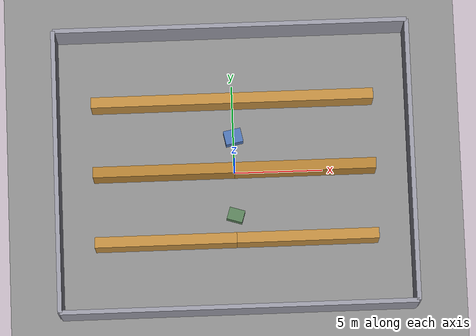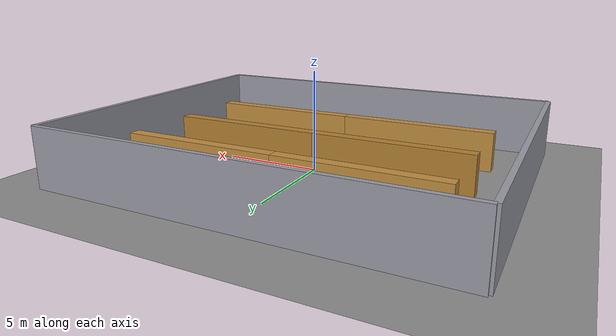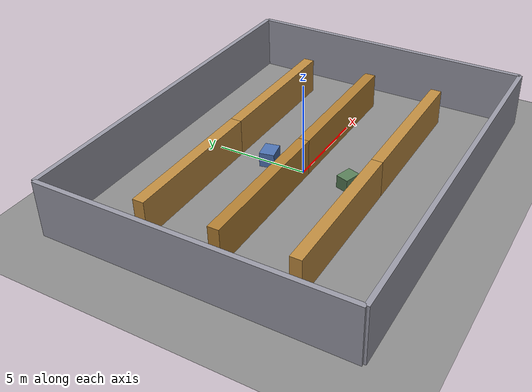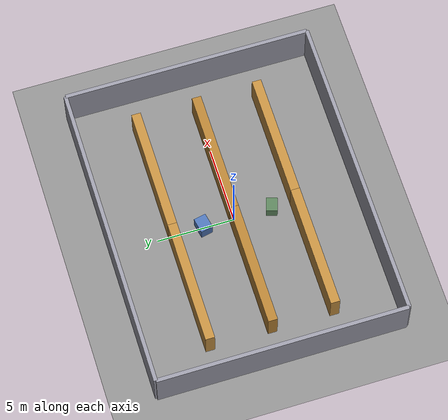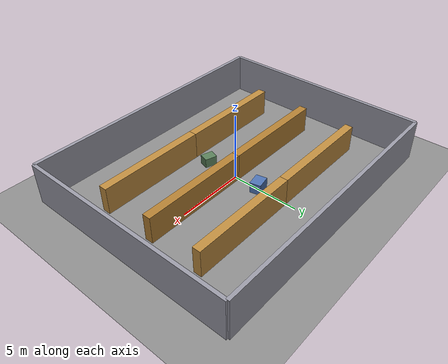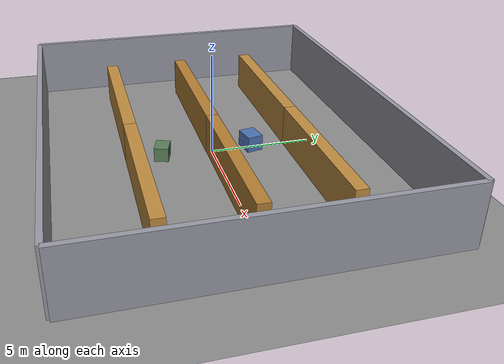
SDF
<?xml version="1.0" ?>
<sdf version="1.8">
  <world name="go2_rl">
    <physics name="1ms" type="ode">
      <max_step_size>0.005</max_step_size>
      <real_time_factor>1.0</real_time_factor>
    </physics>

    <plugin filename="gz-sim-physics-system" name="gz::sim::systems::Physics"/>
    <plugin filename="gz-sim-user-commands-system" name="gz::sim::systems::UserCommands"/>
    <plugin filename="gz-sim-scene-broadcaster-system" name="gz::sim::systems::SceneBroadcaster"/>
    <plugin filename="gz-sim-contact-system" name="gz::sim::systems::Contact"/>
    <plugin filename="gz-sim-imu-system" name="gz::sim::systems::Imu"/>
    <plugin filename="gz-sim-sensors-system" name="gz::sim::systems::Sensors">
      <render_engine>ogre2</render_engine>
    </plugin>

    <scene>
      <ambient>0.55 0.55 0.58 1</ambient>
      <background>0.65 0.65 0.7 1</background>
      <shadows>false</shadows>
    </scene>

    <light type="directional" name="sun">
      <cast_shadows>false</cast_shadows>
      <pose>0 0 12 0 0 0</pose>
      <diffuse>0.85 0.85 0.85 1</diffuse>
      <specular>0.2 0.2 0.2 1</specular>
      <direction>-0.4 0.2 -0.9</direction>
    </light>

    <model name="ground_plane">
      <static>true</static>
      <link name="link">
        <collision name="collision">
          <geometry><plane><normal>0 0 1</normal><size>80 80</size></plane></geometry>
          <surface><friction><ode><mu>1</mu><mu2>1</mu2></ode></friction></surface>
        </collision>
        <visual name="visual">
          <geometry><plane><normal>0 0 1</normal><size>80 80</size></plane></geometry>
          <material><ambient>0.55 0.55 0.55 1</ambient><diffuse>0.55 0.55 0.55 1</diffuse></material>
        </visual>
      </link>
    </model>

    <!-- Outer shell -->
    <model name="wh_wall_n"><static>true</static><pose>0 8 1.5 0 0 0</pose>
      <link name="link"><collision name="c"><geometry><box><size>20 0.25 3</size></box></geometry></collision>
        <visual name="v"><geometry><box><size>20 0.25 3</size></box></geometry>
          <material><ambient>0.6 0.6 0.65 1</ambient><diffuse>0.6 0.6 0.65 1</diffuse></material></visual></link></model>
    <model name="wh_wall_s"><static>true</static><pose>0 -8 1.5 0 0 0</pose>
      <link name="link"><collision name="c"><geometry><box><size>20 0.25 3</size></box></geometry></collision>
        <visual name="v"><geometry><box><size>20 0.25 3</size></box></geometry>
          <material><ambient>0.6 0.6 0.65 1</ambient><diffuse>0.6 0.6 0.65 1</diffuse></material></visual></link></model>
    <model name="wh_wall_e"><static>true</static><pose>10 0 1.5 0 0 0</pose>
      <link name="link"><collision name="c"><geometry><box><size>0.25 16 3</size></box></geometry></collision>
        <visual name="v"><geometry><box><size>0.25 16 3</size></box></geometry>
          <material><ambient>0.6 0.6 0.65 1</ambient><diffuse>0.6 0.6 0.65 1</diffuse></material></visual></link></model>
    <model name="wh_wall_w"><static>true</static><pose>-10 0 1.5 0 0 0</pose>
      <link name="link"><collision name="c"><geometry><box><size>0.25 16 3</size></box></geometry></collision>
        <visual name="v"><geometry><box><size>0.25 16 3</size></box></geometry>
          <material><ambient>0.6 0.6 0.65 1</ambient><diffuse>0.6 0.6 0.65 1</diffuse></material></visual></link></model>

    <!-- Aisle shelves (rows along X, gaps for Go2) -->
    <model name="shelf_a1"><static>true</static><pose>-4 4 1 0 0 0</pose>
      <link name="link"><collision name="c"><geometry><box><size>8 0.6 2</size></box></geometry></collision>
        <visual name="v"><geometry><box><size>8 0.6 2</size></box></geometry>
          <material><ambient>0.75 0.55 0.25 1</ambient><diffuse>0.75 0.55 0.25 1</diffuse></material></visual></link></model>
    <model name="shelf_a2"><static>true</static><pose>4 4 1 0 0 0</pose>
      <link name="link"><collision name="c"><geometry><box><size>8 0.6 2</size></box></geometry></collision>
        <visual name="v"><geometry><box><size>8 0.6 2</size></box></geometry>
          <material><ambient>0.75 0.55 0.25 1</ambient><diffuse>0.75 0.55 0.25 1</diffuse></material></visual></link></model>
    <model name="shelf_b1"><static>true</static><pose>-4 0 1 0 0 0</pose>
      <link name="link"><collision name="c"><geometry><box><size>8 0.6 2</size></box></geometry></collision>
        <visual name="v"><geometry><box><size>8 0.6 2</size></box></geometry>
          <material><ambient>0.7 0.5 0.2 1</ambient><diffuse>0.7 0.5 0.2 1</diffuse></material></visual></link></model>
    <model name="shelf_b2"><static>true</static><pose>4 0 1 0 0 0</pose>
      <link name="link"><collision name="c"><geometry><box><size>8 0.6 2</size></box></geometry></collision>
        <visual name="v"><geometry><box><size>8 0.6 2</size></box></geometry>
          <material><ambient>0.7 0.5 0.2 1</ambient><diffuse>0.7 0.5 0.2 1</diffuse></material></visual></link></model>
    <model name="shelf_c1"><static>true</static><pose>-4 -4 1 0 0 0</pose>
      <link name="link"><collision name="c"><geometry><box><size>8 0.6 2</size></box></geometry></collision>
        <visual name="v"><geometry><box><size>8 0.6 2</size></box></geometry>
          <material><ambient>0.75 0.55 0.25 1</ambient><diffuse>0.75 0.55 0.25 1</diffuse></material></visual></link></model>
    <model name="shelf_c2"><static>true</static><pose>4 -4 1 0 0 0</pose>
      <link name="link"><collision name="c"><geometry><box><size>8 0.6 2</size></box></geometry></collision>
        <visual name="v"><geometry><box><size>8 0.6 2</size></box></geometry>
          <material><ambient>0.75 0.55 0.25 1</ambient><diffuse>0.75 0.55 0.25 1</diffuse></material></visual></link></model>

    <!-- Pallet stacks in central corridor gaps -->
    <model name="pallet_1"><static>true</static><pose>0 2 0.4 0 0 0.2</pose>
      <link name="link"><collision name="c"><geometry><box><size>1.0 0.8 0.8</size></box></geometry></collision>
        <visual name="v"><geometry><box><size>1.0 0.8 0.8</size></box></geometry>
          <material><ambient>0.3 0.45 0.7 1</ambient><diffuse>0.3 0.45 0.7 1</diffuse></material></visual></link></model>
    <model name="pallet_2"><static>true</static><pose>0 -2.5 0.35 0 0 -0.3</pose>
      <link name="link"><collision name="c"><geometry><box><size>0.9 0.7 0.7</size></box></geometry></collision>
        <visual name="v"><geometry><box><size>0.9 0.7 0.7</size></box></geometry>
          <material><ambient>0.35 0.5 0.35 1</ambient><diffuse>0.35 0.5 0.35 1</diffuse></material></visual></link></model>
  </world>
</sdf>
